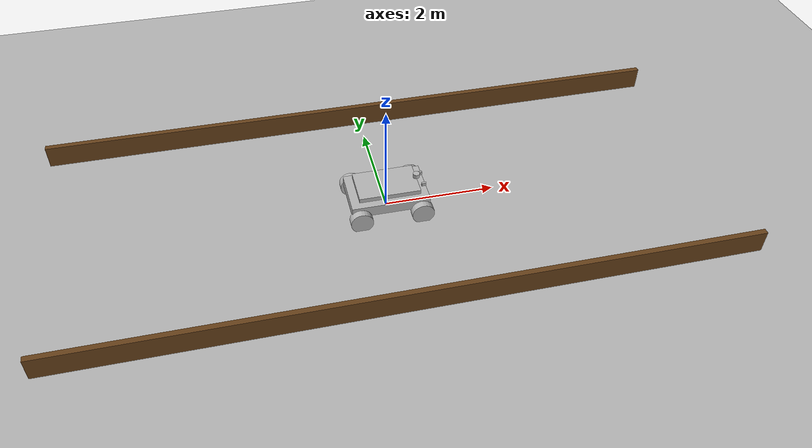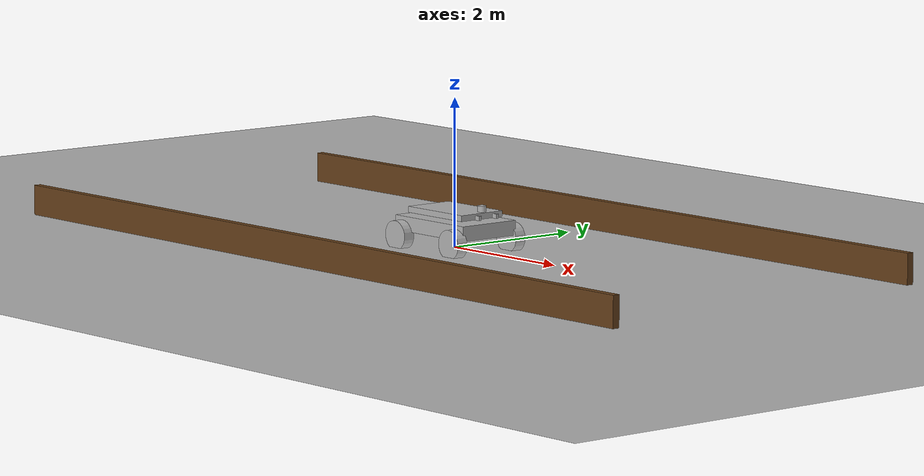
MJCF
<mujoco model="kusawake_dev_preview">
  <compiler angle="degree" coordinate="local" inertiafromgeom="true"/>
  <option timestep="0.002" iterations="50" solver="Newton" gravity="0 0 -9.81"/>

  <default>
    <joint armature="0.01" damping="0.5"/>
    <geom contype="1" conaffinity="1" friction="0.9 0.1 0.05" rgba="0.7 0.7 0.7 1"/>
    <motor ctrllimited="true" ctrlrange="-1 1"/>
  </default>

  <asset>
    <texture type="skybox" builtin="gradient" rgb1="0.5 0.7 0.9" rgb2="0.0 0.0 0.0" width="256" height="256"/>
    <texture type="2d" name="grass" builtin="checker" rgb1="0.25 0.4 0.15" rgb2="0.35 0.5 0.2" width="512" height="512"/>
    <material name="grass" texture="grass" texrepeat="20 20" reflectance="0.0"/>
    <material name="chassis_mat" rgba="0.20 0.55 0.20 1"/>
    <material name="deck_mat" rgba="0.85 0.85 0.85 1"/>
    <material name="wheel_mat" rgba="0.10 0.10 0.10 1"/>
    <material name="lidar_mat" rgba="0.95 0.85 0.10 1"/>
    <material name="cam_mat" rgba="0.10 0.10 0.85 1"/>
  </asset>

  <worldbody>
    <light name="sun" pos="0 0 5" dir="0 0 -1" diffuse="0.8 0.8 0.8" specular="0.1 0.1 0.1"/>
    <light name="fill" pos="3 -3 4" dir="-0.5 0.5 -1" diffuse="0.3 0.3 0.3"/>

    <!-- Orchard-row reference field: 30 m x 30 m grass -->
    <geom name="ground" type="plane" size="15 15 0.1" material="grass" friction="0.9 0.1 0.05"/>

    <!-- Vine-row markers (visual only) — Wave 2 orchard reference -->
    <body name="row_1" pos="0 -2.5 0">
      <geom type="box" size="6 0.05 0.4" rgba="0.4 0.25 0.1 1" contype="0" conaffinity="0"/>
    </body>
    <body name="row_2" pos="0 2.5 0">
      <geom type="box" size="6 0.05 0.4" rgba="0.4 0.25 0.1 1" contype="0" conaffinity="0"/>
    </body>

    <!-- Kusawake chassis -->
    <body name="chassis" pos="0 0 0.30">
      <freejoint name="root"/>
      <!-- main chassis box: 1.4 x 0.9 x 0.20 m, ~ inertial-equivalent to 250 kg -->
      <geom name="chassis_box" type="box" size="0.70 0.45 0.10" material="chassis_mat" mass="250"/>
      <!-- payload deck on top -->
      <geom name="deck" type="box" pos="0 0 0.18" size="0.55 0.35 0.04" material="deck_mat" mass="50"/>

      <!-- LiDAR puck (visual marker) -->
      <geom name="lidar_puck" type="cylinder" pos="0.55 0 0.28" size="0.06 0.04" material="lidar_mat" contype="0" conaffinity="0"/>
      <!-- RGB cameras (visual markers) -->
      <geom name="cam_front" type="box" pos="0.65 0.15 0.18" size="0.04 0.02 0.03" material="cam_mat" contype="0" conaffinity="0"/>
      <geom name="cam_front_r" type="box" pos="0.65 -0.15 0.18" size="0.04 0.02 0.03" material="cam_mat" contype="0" conaffinity="0"/>

      <!-- On-board camera (MuJoCo-recordable) -->
      <camera name="onboard" pos="0.65 0 0.30" euler="90 0 90" fovy="60"/>
      <!-- 3rd-person tracking camera -->
      <camera name="track" mode="track" pos="-3 -3 3" xyaxes="1 -1 0 1 1 2"/>

      <!-- ─── 4WS / 4WD wheel modules ─── -->

      <!-- FL: front-left -->
      <body name="steer_fl" pos="0.55 0.50 -0.05">
        <joint name="steer_fl" type="hinge" axis="0 0 1" range="-45 45" damping="2"/>
        <geom name="steer_post_fl" type="cylinder" size="0.04 0.05" rgba="0.3 0.3 0.3 1" mass="0.5"/>
        <body name="wheel_fl" pos="0 0 -0.10">
          <joint name="drive_fl" type="hinge" axis="0 1 0" damping="0.1"/>
          <geom name="wheel_fl" type="cylinder" size="0.20 0.08" euler="90 0 0" material="wheel_mat" mass="6" friction="1.2 0.05 0.05"/>
        </body>
      </body>

      <!-- FR: front-right -->
      <body name="steer_fr" pos="0.55 -0.50 -0.05">
        <joint name="steer_fr" type="hinge" axis="0 0 1" range="-45 45" damping="2"/>
        <geom type="cylinder" size="0.04 0.05" rgba="0.3 0.3 0.3 1" mass="0.5"/>
        <body name="wheel_fr" pos="0 0 -0.10">
          <joint name="drive_fr" type="hinge" axis="0 1 0" damping="0.1"/>
          <geom type="cylinder" size="0.20 0.08" euler="90 0 0" material="wheel_mat" mass="6" friction="1.2 0.05 0.05"/>
        </body>
      </body>

      <!-- RL: rear-left -->
      <body name="steer_rl" pos="-0.55 0.50 -0.05">
        <joint name="steer_rl" type="hinge" axis="0 0 1" range="-45 45" damping="2"/>
        <geom type="cylinder" size="0.04 0.05" rgba="0.3 0.3 0.3 1" mass="0.5"/>
        <body name="wheel_rl" pos="0 0 -0.10">
          <joint name="drive_rl" type="hinge" axis="0 1 0" damping="0.1"/>
          <geom type="cylinder" size="0.20 0.08" euler="90 0 0" material="wheel_mat" mass="6" friction="1.2 0.05 0.05"/>
        </body>
      </body>

      <!-- RR: rear-right -->
      <body name="steer_rr" pos="-0.55 -0.50 -0.05">
        <joint name="steer_rr" type="hinge" axis="0 0 1" range="-45 45" damping="2"/>
        <geom type="cylinder" size="0.04 0.05" rgba="0.3 0.3 0.3 1" mass="0.5"/>
        <body name="wheel_rr" pos="0 0 -0.10">
          <joint name="drive_rr" type="hinge" axis="0 1 0" damping="0.1"/>
          <geom type="cylinder" size="0.20 0.08" euler="90 0 0" material="wheel_mat" mass="6" friction="1.2 0.05 0.05"/>
        </body>
      </body>
    </body>
  </worldbody>

  <actuator>
    <!-- Steering: position-controlled hinge, ±45° -->
    <position name="steer_fl_act" joint="steer_fl" kp="200" ctrlrange="-0.785 0.785"/>
    <position name="steer_fr_act" joint="steer_fr" kp="200" ctrlrange="-0.785 0.785"/>
    <position name="steer_rl_act" joint="steer_rl" kp="200" ctrlrange="-0.785 0.785"/>
    <position name="steer_rr_act" joint="steer_rr" kp="200" ctrlrange="-0.785 0.785"/>

    <!-- Drive: velocity-controlled wheel hinge, ≈ ≤6 km/h ≈ ≤1.7 m/s ≈ ≤8 rad/s @ r=0.20 -->
    <velocity name="drive_fl_act" joint="drive_fl" kv="20" ctrlrange="-8 8"/>
    <velocity name="drive_fr_act" joint="drive_fr" kv="20" ctrlrange="-8 8"/>
    <velocity name="drive_rl_act" joint="drive_rl" kv="20" ctrlrange="-8 8"/>
    <velocity name="drive_rr_act" joint="drive_rr" kv="20" ctrlrange="-8 8"/>
  </actuator>

  <sensor>
    <framepos name="chassis_pos" objtype="body" objname="chassis"/>
    <framequat name="chassis_quat" objtype="body" objname="chassis"/>
  </sensor>
</mujoco>
